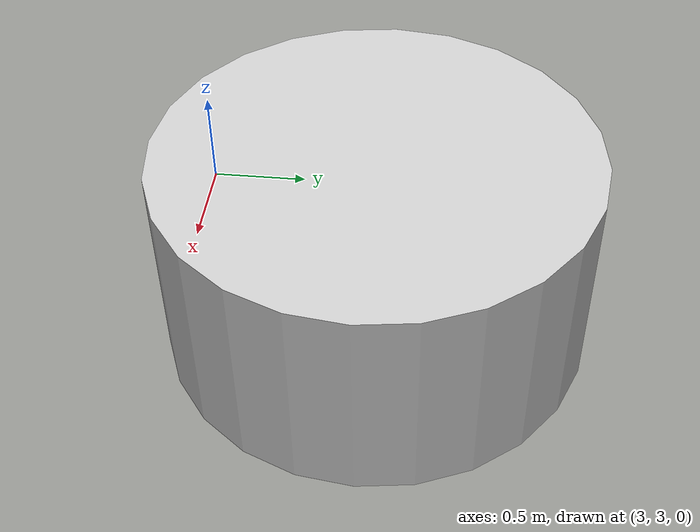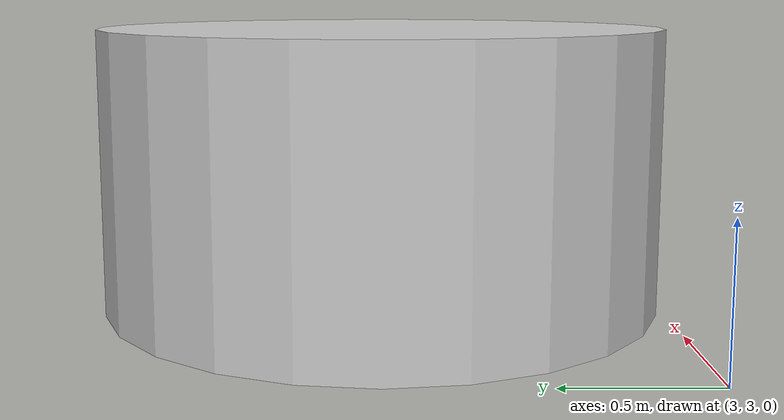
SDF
<?xml version='1.0' encoding='utf-8'?>
<sdf version="1.6">
  <model name="cylinder">
    <pose>4 4 0.5 0 0 0</pose>
    <static>true</static>
    <link name="link">
      <inertial>
        <mass>1.0</mass>
        <inertia>
          <ixx>0.083</ixx>
          <ixy>0.0</ixy>
          <ixz>0.0</ixz>
          <iyy>0.083</iyy>
          <iyz>0.0</iyz>
          <izz>0.083</izz>
        </inertia>
      </inertial>
      <collision name="collision">
        <geometry>
          <cylinder>
            <size>1 1 1</size>
          </cylinder>
        </geometry>
      </collision>
      <visual name="visual">
        <geometry>
          <cylinder>
            <size>1 1 1</size>
          </cylinder>
        </geometry>
        <material>
          <ambient>0.8 0.8 0.8 1</ambient>
          <diffuse>0.8 0.8 0.8 1</diffuse>
          <specular>0.8 0.8 0.8 1</specular>
        </material>
      </visual>
    </link>
  </model>
</sdf>
